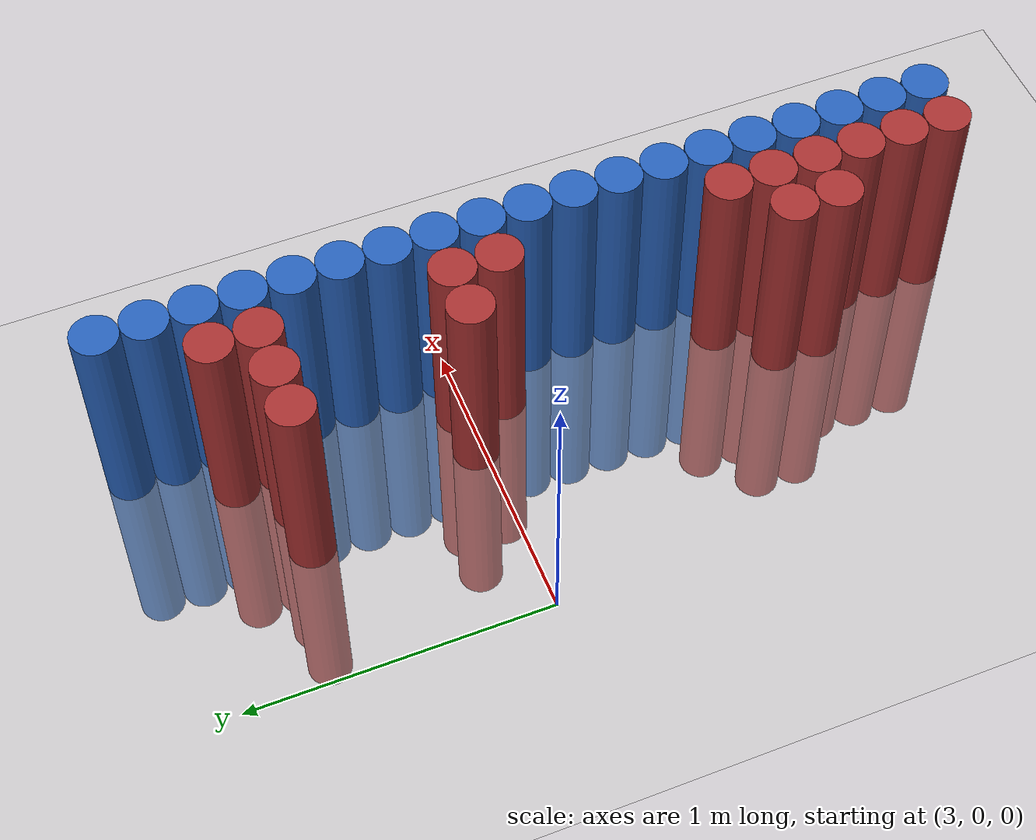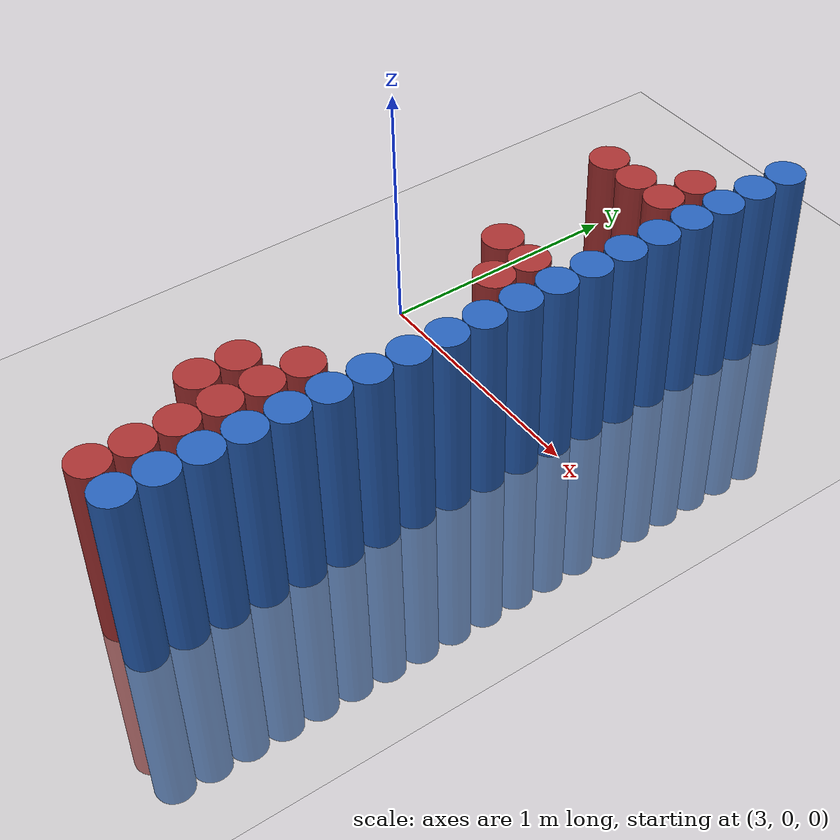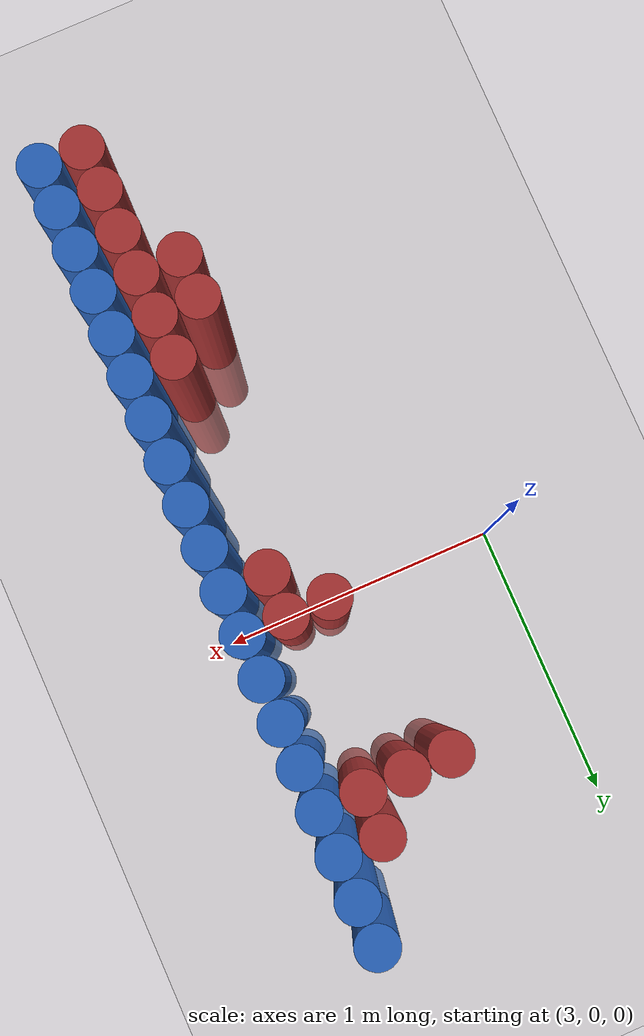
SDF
<sdf version="1.6">
 <world name="default">
  <model name="ground_plane">
   <static>1</static>
   <link name="link">
    <collision name="collision">
     <geometry><plane><normal>0 0 1</normal><size>100 100</size></plane></geometry>
     <surface><friction><ode><mu>100</mu><mu2>50</mu2></ode></friction></surface>
    </collision>
    <visual name="visual">
     <cast_shadows>0</cast_shadows>
     <geometry><plane><normal>0 0 1</normal><size>100 100</size></plane></geometry>
     <material>
      <script><uri>file://media/materials/scripts/gazebo.material</uri><name>Gazebo/Grey</name></script>
     </material>
    </visual>
   </link>
  </model>
  <model name="unit_cylinder_92">
   <static>1</static>
   <pose>3.925000 -1.625000 0.000000 0.000000 0.000000 0.000000</pose>
   <link name="link">
    <inertial>
     <mass>1</mass>
     <inertia><ixx>0.145833</ixx><ixy>0</ixy><ixz>0</ixz><iyy>0.145833</iyy><iyz>0</iyz><izz>0.125</izz></inertia>
    </inertial>
    <collision name="collision">
     <geometry><cylinder><radius>0.075000</radius><length>1.5</length></cylinder></geometry>
    </collision>
    <visual name="visual">
     <geometry><cylinder><radius>0.075000</radius><length>1.5</length></cylinder></geometry>
     <material>
      <ambient>0.152000 0.379000 0.720000 1</ambient>
      <diffuse>0.152000 0.379000 0.720000 1</diffuse>
     </material>
     <material>
      <script><name>Gazebo/Grey</name><uri>file://media/materials/scripts/gazebo.material</uri></script>
     </material>
    </visual>
   </link>
  </model>
  <model name="unit_cylinder_94">
   <static>1</static>
   <pose>3.925000 -1.475000 0.000000 0.000000 0.000000 0.000000</pose>
   <link name="link">
    <inertial>
     <mass>1</mass>
     <inertia><ixx>0.145833</ixx><ixy>0</ixy><ixz>0</ixz><iyy>0.145833</iyy><iyz>0</iyz><izz>0.125</izz></inertia>
    </inertial>
    <collision name="collision">
     <geometry><cylinder><radius>0.075000</radius><length>1.5</length></cylinder></geometry>
    </collision>
    <visual name="visual">
     <geometry><cylinder><radius>0.075000</radius><length>1.5</length></cylinder></geometry>
     <material>
      <ambient>0.152000 0.379000 0.720000 1</ambient>
      <diffuse>0.152000 0.379000 0.720000 1</diffuse>
     </material>
     <material>
      <script><name>Gazebo/Grey</name><uri>file://media/materials/scripts/gazebo.material</uri></script>
     </material>
    </visual>
   </link>
  </model>
  <model name="unit_cylinder_96">
   <static>1</static>
   <pose>3.925000 -1.325000 0.000000 0.000000 0.000000 0.000000</pose>
   <link name="link">
    <inertial>
     <mass>1</mass>
     <inertia><ixx>0.145833</ixx><ixy>0</ixy><ixz>0</ixz><iyy>0.145833</iyy><iyz>0</iyz><izz>0.125</izz></inertia>
    </inertial>
    <collision name="collision">
     <geometry><cylinder><radius>0.075000</radius><length>1.5</length></cylinder></geometry>
    </collision>
    <visual name="visual">
     <geometry><cylinder><radius>0.075000</radius><length>1.5</length></cylinder></geometry>
     <material>
      <ambient>0.152000 0.379000 0.720000 1</ambient>
      <diffuse>0.152000 0.379000 0.720000 1</diffuse>
     </material>
     <material>
      <script><name>Gazebo/Grey</name><uri>file://media/materials/scripts/gazebo.material</uri></script>
     </material>
    </visual>
   </link>
  </model>
  <model name="unit_cylinder_98">
   <static>1</static>
   <pose>3.925000 -1.175000 0.000000 0.000000 0.000000 0.000000</pose>
   <link name="link">
    <inertial>
     <mass>1</mass>
     <inertia><ixx>0.145833</ixx><ixy>0</ixy><ixz>0</ixz><iyy>0.145833</iyy><iyz>0</iyz><izz>0.125</izz></inertia>
    </inertial>
    <collision name="collision">
     <geometry><cylinder><radius>0.075000</radius><length>1.5</length></cylinder></geometry>
    </collision>
    <visual name="visual">
     <geometry><cylinder><radius>0.075000</radius><length>1.5</length></cylinder></geometry>
     <material>
      <ambient>0.152000 0.379000 0.720000 1</ambient>
      <diffuse>0.152000 0.379000 0.720000 1</diffuse>
     </material>
     <material>
      <script><name>Gazebo/Grey</name><uri>file://media/materials/scripts/gazebo.material</uri></script>
     </material>
    </visual>
   </link>
  </model>
  <model name="unit_cylinder_100">
   <static>1</static>
   <pose>3.925000 -1.025000 0.000000 0.000000 0.000000 0.000000</pose>
   <link name="link">
    <inertial>
     <mass>1</mass>
     <inertia><ixx>0.145833</ixx><ixy>0</ixy><ixz>0</ixz><iyy>0.145833</iyy><iyz>0</iyz><izz>0.125</izz></inertia>
    </inertial>
    <collision name="collision">
     <geometry><cylinder><radius>0.075000</radius><length>1.5</length></cylinder></geometry>
    </collision>
    <visual name="visual">
     <geometry><cylinder><radius>0.075000</radius><length>1.5</length></cylinder></geometry>
     <material>
      <ambient>0.152000 0.379000 0.720000 1</ambient>
      <diffuse>0.152000 0.379000 0.720000 1</diffuse>
     </material>
     <material>
      <script><name>Gazebo/Grey</name><uri>file://media/materials/scripts/gazebo.material</uri></script>
     </material>
    </visual>
   </link>
  </model>
  <model name="unit_cylinder_102">
   <static>1</static>
   <pose>3.925000 -0.875000 0.000000 0.000000 0.000000 0.000000</pose>
   <link name="link">
    <inertial>
     <mass>1</mass>
     <inertia><ixx>0.145833</ixx><ixy>0</ixy><ixz>0</ixz><iyy>0.145833</iyy><iyz>0</iyz><izz>0.125</izz></inertia>
    </inertial>
    <collision name="collision">
     <geometry><cylinder><radius>0.075000</radius><length>1.5</length></cylinder></geometry>
    </collision>
    <visual name="visual">
     <geometry><cylinder><radius>0.075000</radius><length>1.5</length></cylinder></geometry>
     <material>
      <ambient>0.152000 0.379000 0.720000 1</ambient>
      <diffuse>0.152000 0.379000 0.720000 1</diffuse>
     </material>
     <material>
      <script><name>Gazebo/Grey</name><uri>file://media/materials/scripts/gazebo.material</uri></script>
     </material>
    </visual>
   </link>
  </model>
  <model name="unit_cylinder_104">
   <static>1</static>
   <pose>3.925000 -0.725000 0.000000 0.000000 0.000000 0.000000</pose>
   <link name="link">
    <inertial>
     <mass>1</mass>
     <inertia><ixx>0.145833</ixx><ixy>0</ixy><ixz>0</ixz><iyy>0.145833</iyy><iyz>0</iyz><izz>0.125</izz></inertia>
    </inertial>
    <collision name="collision">
     <geometry><cylinder><radius>0.075000</radius><length>1.5</length></cylinder></geometry>
    </collision>
    <visual name="visual">
     <geometry><cylinder><radius>0.075000</radius><length>1.5</length></cylinder></geometry>
     <material>
      <ambient>0.152000 0.379000 0.720000 1</ambient>
      <diffuse>0.152000 0.379000 0.720000 1</diffuse>
     </material>
     <material>
      <script><name>Gazebo/Grey</name><uri>file://media/materials/scripts/gazebo.material</uri></script>
     </material>
    </visual>
   </link>
  </model>
  <model name="unit_cylinder_106">
   <static>1</static>
   <pose>3.925000 -0.575000 0.000000 0.000000 0.000000 0.000000</pose>
   <link name="link">
    <inertial>
     <mass>1</mass>
     <inertia><ixx>0.145833</ixx><ixy>0</ixy><ixz>0</ixz><iyy>0.145833</iyy><iyz>0</iyz><izz>0.125</izz></inertia>
    </inertial>
    <collision name="collision">
     <geometry><cylinder><radius>0.075000</radius><length>1.5</length></cylinder></geometry>
    </collision>
    <visual name="visual">
     <geometry><cylinder><radius>0.075000</radius><length>1.5</length></cylinder></geometry>
     <material>
      <ambient>0.152000 0.379000 0.720000 1</ambient>
      <diffuse>0.152000 0.379000 0.720000 1</diffuse>
     </material>
     <material>
      <script><name>Gazebo/Grey</name><uri>file://media/materials/scripts/gazebo.material</uri></script>
     </material>
    </visual>
   </link>
  </model>
  <model name="unit_cylinder_108">
   <static>1</static>
   <pose>3.925000 -0.425000 0.000000 0.000000 0.000000 0.000000</pose>
   <link name="link">
    <inertial>
     <mass>1</mass>
     <inertia><ixx>0.145833</ixx><ixy>0</ixy><ixz>0</ixz><iyy>0.145833</iyy><iyz>0</iyz><izz>0.125</izz></inertia>
    </inertial>
    <collision name="collision">
     <geometry><cylinder><radius>0.075000</radius><length>1.5</length></cylinder></geometry>
    </collision>
    <visual name="visual">
     <geometry><cylinder><radius>0.075000</radius><length>1.5</length></cylinder></geometry>
     <material>
      <ambient>0.152000 0.379000 0.720000 1</ambient>
      <diffuse>0.152000 0.379000 0.720000 1</diffuse>
     </material>
     <material>
      <script><name>Gazebo/Grey</name><uri>file://media/materials/scripts/gazebo.material</uri></script>
     </material>
    </visual>
   </link>
  </model>
  <model name="unit_cylinder_110">
   <static>1</static>
   <pose>3.925000 -0.275000 0.000000 0.000000 0.000000 0.000000</pose>
   <link name="link">
    <inertial>
     <mass>1</mass>
     <inertia><ixx>0.145833</ixx><ixy>0</ixy><ixz>0</ixz><iyy>0.145833</iyy><iyz>0</iyz><izz>0.125</izz></inertia>
    </inertial>
    <collision name="collision">
     <geometry><cylinder><radius>0.075000</radius><length>1.5</length></cylinder></geometry>
    </collision>
    <visual name="visual">
     <geometry><cylinder><radius>0.075000</radius><length>1.5</length></cylinder></geometry>
     <material>
      <ambient>0.152000 0.379000 0.720000 1</ambient>
      <diffuse>0.152000 0.379000 0.720000 1</diffuse>
     </material>
     <material>
      <script><name>Gazebo/Grey</name><uri>file://media/materials/scripts/gazebo.material</uri></script>
     </material>
    </visual>
   </link>
  </model>
  <model name="unit_cylinder_112">
   <static>1</static>
   <pose>3.925000 -0.125000 0.000000 0.000000 0.000000 0.000000</pose>
   <link name="link">
    <inertial>
     <mass>1</mass>
     <inertia><ixx>0.145833</ixx><ixy>0</ixy><ixz>0</ixz><iyy>0.145833</iyy><iyz>0</iyz><izz>0.125</izz></inertia>
    </inertial>
    <collision name="collision">
     <geometry><cylinder><radius>0.075000</radius><length>1.5</length></cylinder></geometry>
    </collision>
    <visual name="visual">
     <geometry><cylinder><radius>0.075000</radius><length>1.5</length></cylinder></geometry>
     <material>
      <ambient>0.152000 0.379000 0.720000 1</ambient>
      <diffuse>0.152000 0.379000 0.720000 1</diffuse>
     </material>
     <material>
      <script><name>Gazebo/Grey</name><uri>file://media/materials/scripts/gazebo.material</uri></script>
     </material>
    </visual>
   </link>
  </model>
  <model name="unit_cylinder_114">
   <static>1</static>
   <pose>3.925000 0.025000 0.000000 0.000000 0.000000 0.000000</pose>
   <link name="link">
    <inertial>
     <mass>1</mass>
     <inertia><ixx>0.145833</ixx><ixy>0</ixy><ixz>0</ixz><iyy>0.145833</iyy><iyz>0</iyz><izz>0.125</izz></inertia>
    </inertial>
    <collision name="collision">
     <geometry><cylinder><radius>0.075000</radius><length>1.5</length></cylinder></geometry>
    </collision>
    <visual name="visual">
     <geometry><cylinder><radius>0.075000</radius><length>1.5</length></cylinder></geometry>
     <material>
      <ambient>0.152000 0.379000 0.720000 1</ambient>
      <diffuse>0.152000 0.379000 0.720000 1</diffuse>
     </material>
     <material>
      <script><name>Gazebo/Grey</name><uri>file://media/materials/scripts/gazebo.material</uri></script>
     </material>
    </visual>
   </link>
  </model>
  <model name="unit_cylinder_116">
   <static>1</static>
   <pose>3.925000 0.175000 0.000000 0.000000 0.000000 0.000000</pose>
   <link name="link">
    <inertial>
     <mass>1</mass>
     <inertia><ixx>0.145833</ixx><ixy>0</ixy><ixz>0</ixz><iyy>0.145833</iyy><iyz>0</iyz><izz>0.125</izz></inertia>
    </inertial>
    <collision name="collision">
     <geometry><cylinder><radius>0.075000</radius><length>1.5</length></cylinder></geometry>
    </collision>
    <visual name="visual">
     <geometry><cylinder><radius>0.075000</radius><length>1.5</length></cylinder></geometry>
     <material>
      <ambient>0.152000 0.379000 0.720000 1</ambient>
      <diffuse>0.152000 0.379000 0.720000 1</diffuse>
     </material>
     <material>
      <script><name>Gazebo/Grey</name><uri>file://media/materials/scripts/gazebo.material</uri></script>
     </material>
    </visual>
   </link>
  </model>
  <model name="unit_cylinder_118">
   <static>1</static>
   <pose>3.925000 0.325000 0.000000 0.000000 0.000000 0.000000</pose>
   <link name="link">
    <inertial>
     <mass>1</mass>
     <inertia><ixx>0.145833</ixx><ixy>0</ixy><ixz>0</ixz><iyy>0.145833</iyy><iyz>0</iyz><izz>0.125</izz></inertia>
    </inertial>
    <collision name="collision">
     <geometry><cylinder><radius>0.075000</radius><length>1.5</length></cylinder></geometry>
    </collision>
    <visual name="visual">
     <geometry><cylinder><radius>0.075000</radius><length>1.5</length></cylinder></geometry>
     <material>
      <ambient>0.152000 0.379000 0.720000 1</ambient>
      <diffuse>0.152000 0.379000 0.720000 1</diffuse>
     </material>
     <material>
      <script><name>Gazebo/Grey</name><uri>file://media/materials/scripts/gazebo.material</uri></script>
     </material>
    </visual>
   </link>
  </model>
  <model name="unit_cylinder_120">
   <static>1</static>
   <pose>3.925000 0.475000 0.000000 0.000000 0.000000 0.000000</pose>
   <link name="link">
    <inertial>
     <mass>1</mass>
     <inertia><ixx>0.145833</ixx><ixy>0</ixy><ixz>0</ixz><iyy>0.145833</iyy><iyz>0</iyz><izz>0.125</izz></inertia>
    </inertial>
    <collision name="collision">
     <geometry><cylinder><radius>0.075000</radius><length>1.5</length></cylinder></geometry>
    </collision>
    <visual name="visual">
     <geometry><cylinder><radius>0.075000</radius><length>1.5</length></cylinder></geometry>
     <material>
      <ambient>0.152000 0.379000 0.720000 1</ambient>
      <diffuse>0.152000 0.379000 0.720000 1</diffuse>
     </material>
     <material>
      <script><name>Gazebo/Grey</name><uri>file://media/materials/scripts/gazebo.material</uri></script>
     </material>
    </visual>
   </link>
  </model>
  <model name="unit_cylinder_122">
   <static>1</static>
   <pose>3.925000 0.625000 0.000000 0.000000 0.000000 0.000000</pose>
   <link name="link">
    <inertial>
     <mass>1</mass>
     <inertia><ixx>0.145833</ixx><ixy>0</ixy><ixz>0</ixz><iyy>0.145833</iyy><iyz>0</iyz><izz>0.125</izz></inertia>
    </inertial>
    <collision name="collision">
     <geometry><cylinder><radius>0.075000</radius><length>1.5</length></cylinder></geometry>
    </collision>
    <visual name="visual">
     <geometry><cylinder><radius>0.075000</radius><length>1.5</length></cylinder></geometry>
     <material>
      <ambient>0.152000 0.379000 0.720000 1</ambient>
      <diffuse>0.152000 0.379000 0.720000 1</diffuse>
     </material>
     <material>
      <script><name>Gazebo/Grey</name><uri>file://media/materials/scripts/gazebo.material</uri></script>
     </material>
    </visual>
   </link>
  </model>
  <model name="unit_cylinder_124">
   <static>1</static>
   <pose>3.925000 0.775000 0.000000 0.000000 0.000000 0.000000</pose>
   <link name="link">
    <inertial>
     <mass>1</mass>
     <inertia><ixx>0.145833</ixx><ixy>0</ixy><ixz>0</ixz><iyy>0.145833</iyy><iyz>0</iyz><izz>0.125</izz></inertia>
    </inertial>
    <collision name="collision">
     <geometry><cylinder><radius>0.075000</radius><length>1.5</length></cylinder></geometry>
    </collision>
    <visual name="visual">
     <geometry><cylinder><radius>0.075000</radius><length>1.5</length></cylinder></geometry>
     <material>
      <ambient>0.152000 0.379000 0.720000 1</ambient>
      <diffuse>0.152000 0.379000 0.720000 1</diffuse>
     </material>
     <material>
      <script><name>Gazebo/Grey</name><uri>file://media/materials/scripts/gazebo.material</uri></script>
     </material>
    </visual>
   </link>
  </model>
  <model name="unit_cylinder_126">
   <static>1</static>
   <pose>3.925000 0.925000 0.000000 0.000000 0.000000 0.000000</pose>
   <link name="link">
    <inertial>
     <mass>1</mass>
     <inertia><ixx>0.145833</ixx><ixy>0</ixy><ixz>0</ixz><iyy>0.145833</iyy><iyz>0</iyz><izz>0.125</izz></inertia>
    </inertial>
    <collision name="collision">
     <geometry><cylinder><radius>0.075000</radius><length>1.5</length></cylinder></geometry>
    </collision>
    <visual name="visual">
     <geometry><cylinder><radius>0.075000</radius><length>1.5</length></cylinder></geometry>
     <material>
      <ambient>0.152000 0.379000 0.720000 1</ambient>
      <diffuse>0.152000 0.379000 0.720000 1</diffuse>
     </material>
     <material>
      <script><name>Gazebo/Grey</name><uri>file://media/materials/scripts/gazebo.material</uri></script>
     </material>
    </visual>
   </link>
  </model>
  <model name="unit_cylinder_128">
   <static>1</static>
   <pose>3.925000 1.075000 0.000000 0.000000 0.000000 0.000000</pose>
   <link name="link">
    <inertial>
     <mass>1</mass>
     <inertia><ixx>0.145833</ixx><ixy>0</ixy><ixz>0</ixz><iyy>0.145833</iyy><iyz>0</iyz><izz>0.125</izz></inertia>
    </inertial>
    <collision name="collision">
     <geometry><cylinder><radius>0.075000</radius><length>1.5</length></cylinder></geometry>
    </collision>
    <visual name="visual">
     <geometry><cylinder><radius>0.075000</radius><length>1.5</length></cylinder></geometry>
     <material>
      <ambient>0.152000 0.379000 0.720000 1</ambient>
      <diffuse>0.152000 0.379000 0.720000 1</diffuse>
     </material>
     <material>
      <script><name>Gazebo/Grey</name><uri>file://media/materials/scripts/gazebo.material</uri></script>
     </material>
    </visual>
   </link>
  </model>
  <model name="unit_cylinder_602">
   <static>1</static>
   <pose>3.475000 0.625000 0.000000 0.000000 0.000000 0.000000</pose>
   <link name="link">
    <inertial>
     <mass>1</mass>
     <inertia><ixx>0.145833</ixx><ixy>0</ixy><ixz>0</ixz><iyy>0.145833</iyy><iyz>0</iyz><izz>0.125</izz></inertia>
    </inertial>
    <collision name="collision">
     <geometry><cylinder><radius>0.075000</radius><length>1.5</length></cylinder></geometry>
    </collision>
    <visual name="visual">
     <geometry><cylinder><radius>0.075000</radius><length>1.5</length></cylinder></geometry>
     <material>
      <ambient>0.648000 0.192000 0.192000 1</ambient>
      <diffuse>0.648000 0.192000 0.192000 1</diffuse>
     </material>
     <material>
      <script><name>Gazebo/Grey</name><uri>file://media/materials/scripts/gazebo.material</uri></script>
     </material>
    </visual>
   </link>
  </model>
  <model name="unit_cylinder_604">
   <static>1</static>
   <pose>3.625000 -1.175000 0.000000 0.000000 0.000000 0.000000</pose>
   <link name="link">
    <inertial>
     <mass>1</mass>
     <inertia><ixx>0.145833</ixx><ixy>0</ixy><ixz>0</ixz><iyy>0.145833</iyy><iyz>0</iyz><izz>0.125</izz></inertia>
    </inertial>
    <collision name="collision">
     <geometry><cylinder><radius>0.075000</radius><length>1.5</length></cylinder></geometry>
    </collision>
    <visual name="visual">
     <geometry><cylinder><radius>0.075000</radius><length>1.5</length></cylinder></geometry>
     <material>
      <ambient>0.648000 0.192000 0.192000 1</ambient>
      <diffuse>0.648000 0.192000 0.192000 1</diffuse>
     </material>
     <material>
      <script><name>Gazebo/Grey</name><uri>file://media/materials/scripts/gazebo.material</uri></script>
     </material>
    </visual>
   </link>
  </model>
  <model name="unit_cylinder_605">
   <static>1</static>
   <pose>3.625000 -1.025000 0.000000 0.000000 0.000000 0.000000</pose>
   <link name="link">
    <inertial>
     <mass>1</mass>
     <inertia><ixx>0.145833</ixx><ixy>0</ixy><ixz>0</ixz><iyy>0.145833</iyy><iyz>0</iyz><izz>0.125</izz></inertia>
    </inertial>
    <collision name="collision">
     <geometry><cylinder><radius>0.075000</radius><length>1.5</length></cylinder></geometry>
    </collision>
    <visual name="visual">
     <geometry><cylinder><radius>0.075000</radius><length>1.5</length></cylinder></geometry>
     <material>
      <ambient>0.648000 0.192000 0.192000 1</ambient>
      <diffuse>0.648000 0.192000 0.192000 1</diffuse>
     </material>
     <material>
      <script><name>Gazebo/Grey</name><uri>file://media/materials/scripts/gazebo.material</uri></script>
     </material>
    </visual>
   </link>
  </model>
  <model name="unit_cylinder_606">
   <static>1</static>
   <pose>3.625000 0.025000 0.000000 0.000000 0.000000 0.000000</pose>
   <link name="link">
    <inertial>
     <mass>1</mass>
     <inertia><ixx>0.145833</ixx><ixy>0</ixy><ixz>0</ixz><iyy>0.145833</iyy><iyz>0</iyz><izz>0.125</izz></inertia>
    </inertial>
    <collision name="collision">
     <geometry><cylinder><radius>0.075000</radius><length>1.5</length></cylinder></geometry>
    </collision>
    <visual name="visual">
     <geometry><cylinder><radius>0.075000</radius><length>1.5</length></cylinder></geometry>
     <material>
      <ambient>0.648000 0.192000 0.192000 1</ambient>
      <diffuse>0.648000 0.192000 0.192000 1</diffuse>
     </material>
     <material>
      <script><name>Gazebo/Grey</name><uri>file://media/materials/scripts/gazebo.material</uri></script>
     </material>
    </visual>
   </link>
  </model>
  <model name="unit_cylinder_607">
   <static>1</static>
   <pose>3.625000 0.625000 0.000000 0.000000 0.000000 0.000000</pose>
   <link name="link">
    <inertial>
     <mass>1</mass>
     <inertia><ixx>0.145833</ixx><ixy>0</ixy><ixz>0</ixz><iyy>0.145833</iyy><iyz>0</iyz><izz>0.125</izz></inertia>
    </inertial>
    <collision name="collision">
     <geometry><cylinder><radius>0.075000</radius><length>1.5</length></cylinder></geometry>
    </collision>
    <visual name="visual">
     <geometry><cylinder><radius>0.075000</radius><length>1.5</length></cylinder></geometry>
     <material>
      <ambient>0.648000 0.192000 0.192000 1</ambient>
      <diffuse>0.648000 0.192000 0.192000 1</diffuse>
     </material>
     <material>
      <script><name>Gazebo/Grey</name><uri>file://media/materials/scripts/gazebo.material</uri></script>
     </material>
    </visual>
   </link>
  </model>
  <model name="unit_cylinder_611">
   <static>1</static>
   <pose>3.775000 -1.625000 0.000000 0.000000 0.000000 0.000000</pose>
   <link name="link">
    <inertial>
     <mass>1</mass>
     <inertia><ixx>0.145833</ixx><ixy>0</ixy><ixz>0</ixz><iyy>0.145833</iyy><iyz>0</iyz><izz>0.125</izz></inertia>
    </inertial>
    <collision name="collision">
     <geometry><cylinder><radius>0.075000</radius><length>1.5</length></cylinder></geometry>
    </collision>
    <visual name="visual">
     <geometry><cylinder><radius>0.075000</radius><length>1.5</length></cylinder></geometry>
     <material>
      <ambient>0.648000 0.192000 0.192000 1</ambient>
      <diffuse>0.648000 0.192000 0.192000 1</diffuse>
     </material>
     <material>
      <script><name>Gazebo/Grey</name><uri>file://media/materials/scripts/gazebo.material</uri></script>
     </material>
    </visual>
   </link>
  </model>
  <model name="unit_cylinder_612">
   <static>1</static>
   <pose>3.775000 -1.475000 0.000000 0.000000 0.000000 0.000000</pose>
   <link name="link">
    <inertial>
     <mass>1</mass>
     <inertia><ixx>0.145833</ixx><ixy>0</ixy><ixz>0</ixz><iyy>0.145833</iyy><iyz>0</iyz><izz>0.125</izz></inertia>
    </inertial>
    <collision name="collision">
     <geometry><cylinder><radius>0.075000</radius><length>1.5</length></cylinder></geometry>
    </collision>
    <visual name="visual">
     <geometry><cylinder><radius>0.075000</radius><length>1.5</length></cylinder></geometry>
     <material>
      <ambient>0.648000 0.192000 0.192000 1</ambient>
      <diffuse>0.648000 0.192000 0.192000 1</diffuse>
     </material>
     <material>
      <script><name>Gazebo/Grey</name><uri>file://media/materials/scripts/gazebo.material</uri></script>
     </material>
    </visual>
   </link>
  </model>
  <model name="unit_cylinder_613">
   <static>1</static>
   <pose>3.775000 -1.325000 0.000000 0.000000 0.000000 0.000000</pose>
   <link name="link">
    <inertial>
     <mass>1</mass>
     <inertia><ixx>0.145833</ixx><ixy>0</ixy><ixz>0</ixz><iyy>0.145833</iyy><iyz>0</iyz><izz>0.125</izz></inertia>
    </inertial>
    <collision name="collision">
     <geometry><cylinder><radius>0.075000</radius><length>1.5</length></cylinder></geometry>
    </collision>
    <visual name="visual">
     <geometry><cylinder><radius>0.075000</radius><length>1.5</length></cylinder></geometry>
     <material>
      <ambient>0.648000 0.192000 0.192000 1</ambient>
      <diffuse>0.648000 0.192000 0.192000 1</diffuse>
     </material>
     <material>
      <script><name>Gazebo/Grey</name><uri>file://media/materials/scripts/gazebo.material</uri></script>
     </material>
    </visual>
   </link>
  </model>
  <model name="unit_cylinder_614">
   <static>1</static>
   <pose>3.775000 -1.175000 0.000000 0.000000 0.000000 0.000000</pose>
   <link name="link">
    <inertial>
     <mass>1</mass>
     <inertia><ixx>0.145833</ixx><ixy>0</ixy><ixz>0</ixz><iyy>0.145833</iyy><iyz>0</iyz><izz>0.125</izz></inertia>
    </inertial>
    <collision name="collision">
     <geometry><cylinder><radius>0.075000</radius><length>1.5</length></cylinder></geometry>
    </collision>
    <visual name="visual">
     <geometry><cylinder><radius>0.075000</radius><length>1.5</length></cylinder></geometry>
     <material>
      <ambient>0.648000 0.192000 0.192000 1</ambient>
      <diffuse>0.648000 0.192000 0.192000 1</diffuse>
     </material>
     <material>
      <script><name>Gazebo/Grey</name><uri>file://media/materials/scripts/gazebo.material</uri></script>
     </material>
    </visual>
   </link>
  </model>
  <model name="unit_cylinder_615">
   <static>1</static>
   <pose>3.775000 -1.025000 0.000000 0.000000 0.000000 0.000000</pose>
   <link name="link">
    <inertial>
     <mass>1</mass>
     <inertia><ixx>0.145833</ixx><ixy>0</ixy><ixz>0</ixz><iyy>0.145833</iyy><iyz>0</iyz><izz>0.125</izz></inertia>
    </inertial>
    <collision name="collision">
     <geometry><cylinder><radius>0.075000</radius><length>1.5</length></cylinder></geometry>
    </collision>
    <visual name="visual">
     <geometry><cylinder><radius>0.075000</radius><length>1.5</length></cylinder></geometry>
     <material>
      <ambient>0.648000 0.192000 0.192000 1</ambient>
      <diffuse>0.648000 0.192000 0.192000 1</diffuse>
     </material>
     <material>
      <script><name>Gazebo/Grey</name><uri>file://media/materials/scripts/gazebo.material</uri></script>
     </material>
    </visual>
   </link>
  </model>
  <model name="unit_cylinder_616">
   <static>1</static>
   <pose>3.775000 -0.875000 0.000000 0.000000 0.000000 0.000000</pose>
   <link name="link">
    <inertial>
     <mass>1</mass>
     <inertia><ixx>0.145833</ixx><ixy>0</ixy><ixz>0</ixz><iyy>0.145833</iyy><iyz>0</iyz><izz>0.125</izz></inertia>
    </inertial>
    <collision name="collision">
     <geometry><cylinder><radius>0.075000</radius><length>1.5</length></cylinder></geometry>
    </collision>
    <visual name="visual">
     <geometry><cylinder><radius>0.075000</radius><length>1.5</length></cylinder></geometry>
     <material>
      <ambient>0.648000 0.192000 0.192000 1</ambient>
      <diffuse>0.648000 0.192000 0.192000 1</diffuse>
     </material>
     <material>
      <script><name>Gazebo/Grey</name><uri>file://media/materials/scripts/gazebo.material</uri></script>
     </material>
    </visual>
   </link>
  </model>
  <model name="unit_cylinder_617">
   <static>1</static>
   <pose>3.775000 -0.125000 0.000000 0.000000 0.000000 0.000000</pose>
   <link name="link">
    <inertial>
     <mass>1</mass>
     <inertia><ixx>0.145833</ixx><ixy>0</ixy><ixz>0</ixz><iyy>0.145833</iyy><iyz>0</iyz><izz>0.125</izz></inertia>
    </inertial>
    <collision name="collision">
     <geometry><cylinder><radius>0.075000</radius><length>1.5</length></cylinder></geometry>
    </collision>
    <visual name="visual">
     <geometry><cylinder><radius>0.075000</radius><length>1.5</length></cylinder></geometry>
     <material>
      <ambient>0.648000 0.192000 0.192000 1</ambient>
      <diffuse>0.648000 0.192000 0.192000 1</diffuse>
     </material>
     <material>
      <script><name>Gazebo/Grey</name><uri>file://media/materials/scripts/gazebo.material</uri></script>
     </material>
    </visual>
   </link>
  </model>
  <model name="unit_cylinder_618">
   <static>1</static>
   <pose>3.775000 0.025000 0.000000 0.000000 0.000000 0.000000</pose>
   <link name="link">
    <inertial>
     <mass>1</mass>
     <inertia><ixx>0.145833</ixx><ixy>0</ixy><ixz>0</ixz><iyy>0.145833</iyy><iyz>0</iyz><izz>0.125</izz></inertia>
    </inertial>
    <collision name="collision">
     <geometry><cylinder><radius>0.075000</radius><length>1.5</length></cylinder></geometry>
    </collision>
    <visual name="visual">
     <geometry><cylinder><radius>0.075000</radius><length>1.5</length></cylinder></geometry>
     <material>
      <ambient>0.648000 0.192000 0.192000 1</ambient>
      <diffuse>0.648000 0.192000 0.192000 1</diffuse>
     </material>
     <material>
      <script><name>Gazebo/Grey</name><uri>file://media/materials/scripts/gazebo.material</uri></script>
     </material>
    </visual>
   </link>
  </model>
  <model name="unit_cylinder_619">
   <static>1</static>
   <pose>3.775000 0.625000 0.000000 0.000000 0.000000 0.000000</pose>
   <link name="link">
    <inertial>
     <mass>1</mass>
     <inertia><ixx>0.145833</ixx><ixy>0</ixy><ixz>0</ixz><iyy>0.145833</iyy><iyz>0</iyz><izz>0.125</izz></inertia>
    </inertial>
    <collision name="collision">
     <geometry><cylinder><radius>0.075000</radius><length>1.5</length></cylinder></geometry>
    </collision>
    <visual name="visual">
     <geometry><cylinder><radius>0.075000</radius><length>1.5</length></cylinder></geometry>
     <material>
      <ambient>0.648000 0.192000 0.192000 1</ambient>
      <diffuse>0.648000 0.192000 0.192000 1</diffuse>
     </material>
     <material>
      <script><name>Gazebo/Grey</name><uri>file://media/materials/scripts/gazebo.material</uri></script>
     </material>
    </visual>
   </link>
  </model>
  <model name="unit_cylinder_620">
   <static>1</static>
   <pose>3.775000 0.775000 0.000000 0.000000 0.000000 0.000000</pose>
   <link name="link">
    <inertial>
     <mass>1</mass>
     <inertia><ixx>0.145833</ixx><ixy>0</ixy><ixz>0</ixz><iyy>0.145833</iyy><iyz>0</iyz><izz>0.125</izz></inertia>
    </inertial>
    <collision name="collision">
     <geometry><cylinder><radius>0.075000</radius><length>1.5</length></cylinder></geometry>
    </collision>
    <visual name="visual">
     <geometry><cylinder><radius>0.075000</radius><length>1.5</length></cylinder></geometry>
     <material>
      <ambient>0.648000 0.192000 0.192000 1</ambient>
      <diffuse>0.648000 0.192000 0.192000 1</diffuse>
     </material>
     <material>
      <script><name>Gazebo/Grey</name><uri>file://media/materials/scripts/gazebo.material</uri></script>
     </material>
    </visual>
   </link>
  </model>
  <model name="unit_cylinder_642">
   <static>1</static>
   <pose>3.925000 -1.625000 0.000000 0.000000 0.000000 0.000000</pose>
   <link name="link">
    <inertial>
     <mass>1</mass>
     <inertia><ixx>0.145833</ixx><ixy>0</ixy><ixz>0</ixz><iyy>0.145833</iyy><iyz>0</iyz><izz>0.125</izz></inertia>
    </inertial>
    <collision name="collision">
     <geometry><cylinder><radius>0.075000</radius><length>1.5</length></cylinder></geometry>
    </collision>
    <visual name="visual">
     <geometry><cylinder><radius>0.075000</radius><length>1.5</length></cylinder></geometry>
     <material>
      <ambient>0.152000 0.379000 0.720000 1</ambient>
      <diffuse>0.152000 0.379000 0.720000 1</diffuse>
     </material>
     <material>
      <script><name>Gazebo/Grey</name><uri>file://media/materials/scripts/gazebo.material</uri></script>
     </material>
    </visual>
   </link>
  </model>
  <model name="unit_cylinder_643">
   <static>1</static>
   <pose>3.925000 -1.475000 0.000000 0.000000 0.000000 0.000000</pose>
   <link name="link">
    <inertial>
     <mass>1</mass>
     <inertia><ixx>0.145833</ixx><ixy>0</ixy><ixz>0</ixz><iyy>0.145833</iyy><iyz>0</iyz><izz>0.125</izz></inertia>
    </inertial>
    <collision name="collision">
     <geometry><cylinder><radius>0.075000</radius><length>1.5</length></cylinder></geometry>
    </collision>
    <visual name="visual">
     <geometry><cylinder><radius>0.075000</radius><length>1.5</length></cylinder></geometry>
     <material>
      <ambient>0.152000 0.379000 0.720000 1</ambient>
      <diffuse>0.152000 0.379000 0.720000 1</diffuse>
     </material>
     <material>
      <script><name>Gazebo/Grey</name><uri>file://media/materials/scripts/gazebo.material</uri></script>
     </material>
    </visual>
   </link>
  </model>
  <model name="unit_cylinder_644">
   <static>1</static>
   <pose>3.925000 -1.325000 0.000000 0.000000 0.000000 0.000000</pose>
   <link name="link">
    <inertial>
     <mass>1</mass>
     <inertia><ixx>0.145833</ixx><ixy>0</ixy><ixz>0</ixz><iyy>0.145833</iyy><iyz>0</iyz><izz>0.125</izz></inertia>
    </inertial>
    <collision name="collision">
     <geometry><cylinder><radius>0.075000</radius><length>1.5</length></cylinder></geometry>
    </collision>
    <visual name="visual">
     <geometry><cylinder><radius>0.075000</radius><length>1.5</length></cylinder></geometry>
     <material>
      <ambient>0.152000 0.379000 0.720000 1</ambient>
      <diffuse>0.152000 0.379000 0.720000 1</diffuse>
     </material>
     <material>
      <script><name>Gazebo/Grey</name><uri>file://media/materials/scripts/gazebo.material</uri></script>
     </material>
    </visual>
   </link>
  </model>
  <model name="unit_cylinder_645">
   <static>1</static>
   <pose>3.925000 -1.175000 0.000000 0.000000 0.000000 0.000000</pose>
   <link name="link">
    <inertial>
     <mass>1</mass>
     <inertia><ixx>0.145833</ixx><ixy>0</ixy><ixz>0</ixz><iyy>0.145833</iyy><iyz>0</iyz><izz>0.125</izz></inertia>
    </inertial>
    <collision name="collision">
     <geometry><cylinder><radius>0.075000</radius><length>1.5</length></cylinder></geometry>
    </collision>
    <visual name="visual">
     <geometry><cylinder><radius>0.075000</radius><length>1.5</length></cylinder></geometry>
     <material>
      <ambient>0.152000 0.379000 0.720000 1</ambient>
      <diffuse>0.152000 0.379000 0.720000 1</diffuse>
     </material>
     <material>
      <script><name>Gazebo/Grey</name><uri>file://media/materials/scripts/gazebo.material</uri></script>
     </material>
    </visual>
   </link>
  </model>
  <model name="unit_cylinder_646">
   <static>1</static>
   <pose>3.925000 -1.025000 0.000000 0.000000 0.000000 0.000000</pose>
   <link name="link">
    <inertial>
     <mass>1</mass>
     <inertia><ixx>0.145833</ixx><ixy>0</ixy><ixz>0</ixz><iyy>0.145833</iyy><iyz>0</iyz><izz>0.125</izz></inertia>
    </inertial>
    <collision name="collision">
     <geometry><cylinder><radius>0.075000</radius><length>1.5</length></cylinder></geometry>
    </collision>
    <visual name="visual">
     <geometry><cylinder><radius>0.075000</radius><length>1.5</length></cylinder></geometry>
     <material>
      <ambient>0.152000 0.379000 0.720000 1</ambient>
      <diffuse>0.152000 0.379000 0.720000 1</diffuse>
     </material>
     <material>
      <script><name>Gazebo/Grey</name><uri>file://media/materials/scripts/gazebo.material</uri></script>
     </material>
    </visual>
   </link>
  </model>
  <model name="unit_cylinder_647">
   <static>1</static>
   <pose>3.925000 -0.875000 0.000000 0.000000 0.000000 0.000000</pose>
   <link name="link">
    <inertial>
     <mass>1</mass>
     <inertia><ixx>0.145833</ixx><ixy>0</ixy><ixz>0</ixz><iyy>0.145833</iyy><iyz>0</iyz><izz>0.125</izz></inertia>
    </inertial>
    <collision name="collision">
     <geometry><cylinder><radius>0.075000</radius><length>1.5</length></cylinder></geometry>
    </collision>
    <visual name="visual">
     <geometry><cylinder><radius>0.075000</radius><length>1.5</length></cylinder></geometry>
     <material>
      <ambient>0.152000 0.379000 0.720000 1</ambient>
      <diffuse>0.152000 0.379000 0.720000 1</diffuse>
     </material>
     <material>
      <script><name>Gazebo/Grey</name><uri>file://media/materials/scripts/gazebo.material</uri></script>
     </material>
    </visual>
   </link>
  </model>
  <model name="unit_cylinder_648">
   <static>1</static>
   <pose>3.925000 -0.725000 0.000000 0.000000 0.000000 0.000000</pose>
   <link name="link">
    <inertial>
     <mass>1</mass>
     <inertia><ixx>0.145833</ixx><ixy>0</ixy><ixz>0</ixz><iyy>0.145833</iyy><iyz>0</iyz><izz>0.125</izz></inertia>
    </inertial>
    <collision name="collision">
     <geometry><cylinder><radius>0.075000</radius><length>1.5</length></cylinder></geometry>
    </collision>
    <visual name="visual">
     <geometry><cylinder><radius>0.075000</radius><length>1.5</length></cylinder></geometry>
     <material>
      <ambient>0.152000 0.379000 0.720000 1</ambient>
      <diffuse>0.152000 0.379000 0.720000 1</diffuse>
     </material>
     <material>
      <script><name>Gazebo/Grey</name><uri>file://media/materials/scripts/gazebo.material</uri></script>
     </material>
    </visual>
   </link>
  </model>
  <model name="unit_cylinder_649">
   <static>1</static>
   <pose>3.925000 -0.575000 0.000000 0.000000 0.000000 0.000000</pose>
   <link name="link">
    <inertial>
     <mass>1</mass>
     <inertia><ixx>0.145833</ixx><ixy>0</ixy><ixz>0</ixz><iyy>0.145833</iyy><iyz>0</iyz><izz>0.125</izz></inertia>
    </inertial>
    <collision name="collision">
     <geometry><cylinder><radius>0.075000</radius><length>1.5</length></cylinder></geometry>
    </collision>
    <visual name="visual">
     <geometry><cylinder><radius>0.075000</radius><length>1.5</length></cylinder></geometry>
     <material>
      <ambient>0.152000 0.379000 0.720000 1</ambient>
      <diffuse>0.152000 0.379000 0.720000 1</diffuse>
     </material>
     <material>
      <script><name>Gazebo/Grey</name><uri>file://media/materials/scripts/gazebo.material</uri></script>
     </material>
    </visual>
   </link>
  </model>
  <model name="unit_cylinder_650">
   <static>1</static>
   <pose>3.925000 -0.425000 0.000000 0.000000 0.000000 0.000000</pose>
   <link name="link">
    <inertial>
     <mass>1</mass>
     <inertia><ixx>0.145833</ixx><ixy>0</ixy><ixz>0</ixz><iyy>0.145833</iyy><iyz>0</iyz><izz>0.125</izz></inertia>
    </inertial>
    <collision name="collision">
     <geometry><cylinder><radius>0.075000</radius><length>1.5</length></cylinder></geometry>
    </collision>
    <visual name="visual">
     <geometry><cylinder><radius>0.075000</radius><length>1.5</length></cylinder></geometry>
     <material>
      <ambient>0.152000 0.379000 0.720000 1</ambient>
      <diffuse>0.152000 0.379000 0.720000 1</diffuse>
     </material>
     <material>
      <script><name>Gazebo/Grey</name><uri>file://media/materials/scripts/gazebo.material</uri></script>
     </material>
    </visual>
   </link>
  </model>
  <model name="unit_cylinder_651">
   <static>1</static>
   <pose>3.925000 -0.275000 0.000000 0.000000 0.000000 0.000000</pose>
   <link name="link">
    <inertial>
     <mass>1</mass>
     <inertia><ixx>0.145833</ixx><ixy>0</ixy><ixz>0</ixz><iyy>0.145833</iyy><iyz>0</iyz><izz>0.125</izz></inertia>
    </inertial>
    <collision name="collision">
     <geometry><cylinder><radius>0.075000</radius><length>1.5</length></cylinder></geometry>
    </collision>
    <visual name="visual">
     <geometry><cylinder><radius>0.075000</radius><length>1.5</length></cylinder></geometry>
     <material>
      <ambient>0.152000 0.379000 0.720000 1</ambient>
      <diffuse>0.152000 0.379000 0.720000 1</diffuse>
     </material>
     <material>
      <script><name>Gazebo/Grey</name><uri>file://media/materials/scripts/gazebo.material</uri></script>
     </material>
    </visual>
   </link>
  </model>
  <model name="unit_cylinder_652">
   <static>1</static>
   <pose>3.925000 -0.125000 0.000000 0.000000 0.000000 0.000000</pose>
   <link name="link">
    <inertial>
     <mass>1</mass>
     <inertia><ixx>0.145833</ixx><ixy>0</ixy><ixz>0</ixz><iyy>0.145833</iyy><iyz>0</iyz><izz>0.125</izz></inertia>
    </inertial>
    <collision name="collision">
     <geometry><cylinder><radius>0.075000</radius><length>1.5</length></cylinder></geometry>
    </collision>
    <visual name="visual">
     <geometry><cylinder><radius>0.075000</radius><length>1.5</length></cylinder></geometry>
     <material>
      <ambient>0.152000 0.379000 0.720000 1</ambient>
      <diffuse>0.152000 0.379000 0.720000 1</diffuse>
     </material>
     <material>
      <script><name>Gazebo/Grey</name><uri>file://media/materials/scripts/gazebo.material</uri></script>
     </material>
    </visual>
   </link>
  </model>
  <model name="unit_cylinder_653">
   <static>1</static>
   <pose>3.925000 0.025000 0.000000 0.000000 0.000000 0.000000</pose>
   <link name="link">
    <inertial>
     <mass>1</mass>
     <inertia><ixx>0.145833</ixx><ixy>0</ixy><ixz>0</ixz><iyy>0.145833</iyy><iyz>0</iyz><izz>0.125</izz></inertia>
    </inertial>
    <collision name="collision">
     <geometry><cylinder><radius>0.075000</radius><length>1.5</length></cylinder></geometry>
    </collision>
    <visual name="visual">
     <geometry><cylinder><radius>0.075000</radius><length>1.5</length></cylinder></geometry>
     <material>
      <ambient>0.152000 0.379000 0.720000 1</ambient>
      <diffuse>0.152000 0.379000 0.720000 1</diffuse>
     </material>
     <material>
      <script><name>Gazebo/Grey</name><uri>file://media/materials/scripts/gazebo.material</uri></script>
     </material>
    </visual>
   </link>
  </model>
  <model name="unit_cylinder_654">
   <static>1</static>
   <pose>3.925000 0.175000 0.000000 0.000000 0.000000 0.000000</pose>
   <link name="link">
    <inertial>
     <mass>1</mass>
     <inertia><ixx>0.145833</ixx><ixy>0</ixy><ixz>0</ixz><iyy>0.145833</iyy><iyz>0</iyz><izz>0.125</izz></inertia>
    </inertial>
    <collision name="collision">
     <geometry><cylinder><radius>0.075000</radius><length>1.5</length></cylinder></geometry>
    </collision>
    <visual name="visual">
     <geometry><cylinder><radius>0.075000</radius><length>1.5</length></cylinder></geometry>
     <material>
      <ambient>0.152000 0.379000 0.720000 1</ambient>
      <diffuse>0.152000 0.379000 0.720000 1</diffuse>
     </material>
     <material>
      <script><name>Gazebo/Grey</name><uri>file://media/materials/scripts/gazebo.material</uri></script>
     </material>
    </visual>
   </link>
  </model>
  <model name="unit_cylinder_655">
   <static>1</static>
   <pose>3.925000 0.325000 0.000000 0.000000 0.000000 0.000000</pose>
   <link name="link">
    <inertial>
     <mass>1</mass>
     <inertia><ixx>0.145833</ixx><ixy>0</ixy><ixz>0</ixz><iyy>0.145833</iyy><iyz>0</iyz><izz>0.125</izz></inertia>
    </inertial>
    <collision name="collision">
     <geometry><cylinder><radius>0.075000</radius><length>1.5</length></cylinder></geometry>
    </collision>
    <visual name="visual">
     <geometry><cylinder><radius>0.075000</radius><length>1.5</length></cylinder></geometry>
     <material>
      <ambient>0.152000 0.379000 0.720000 1</ambient>
      <diffuse>0.152000 0.379000 0.720000 1</diffuse>
     </material>
     <material>
      <script><name>Gazebo/Grey</name><uri>file://media/materials/scripts/gazebo.material</uri></script>
     </material>
    </visual>
   </link>
  </model>
  <model name="unit_cylinder_656">
   <static>1</static>
   <pose>3.925000 0.475000 0.000000 0.000000 0.000000 0.000000</pose>
   <link name="link">
    <inertial>
     <mass>1</mass>
     <inertia><ixx>0.145833</ixx><ixy>0</ixy><ixz>0</ixz><iyy>0.145833</iyy><iyz>0</iyz><izz>0.125</izz></inertia>
    </inertial>
    <collision name="collision">
     <geometry><cylinder><radius>0.075000</radius><length>1.5</length></cylinder></geometry>
    </collision>
    <visual name="visual">
     <geometry><cylinder><radius>0.075000</radius><length>1.5</length></cylinder></geometry>
     <material>
      <ambient>0.152000 0.379000 0.720000 1</ambient>
      <diffuse>0.152000 0.379000 0.720000 1</diffuse>
     </material>
     <material>
      <script><name>Gazebo/Grey</name><uri>file://media/materials/scripts/gazebo.material</uri></script>
     </material>
    </visual>
   </link>
  </model>
  <model name="unit_cylinder_657">
   <static>1</static>
   <pose>3.925000 0.625000 0.000000 0.000000 0.000000 0.000000</pose>
   <link name="link">
    <inertial>
     <mass>1</mass>
     <inertia><ixx>0.145833</ixx><ixy>0</ixy><ixz>0</ixz><iyy>0.145833</iyy><iyz>0</iyz><izz>0.125</izz></inertia>
    </inertial>
    <collision name="collision">
     <geometry><cylinder><radius>0.075000</radius><length>1.5</length></cylinder></geometry>
    </collision>
    <visual name="visual">
     <geometry><cylinder><radius>0.075000</radius><length>1.5</length></cylinder></geometry>
     <material>
      <ambient>0.152000 0.379000 0.720000 1</ambient>
      <diffuse>0.152000 0.379000 0.720000 1</diffuse>
     </material>
     <material>
      <script><name>Gazebo/Grey</name><uri>file://media/materials/scripts/gazebo.material</uri></script>
     </material>
    </visual>
   </link>
  </model>
  <model name="unit_cylinder_658">
   <static>1</static>
   <pose>3.925000 0.775000 0.000000 0.000000 0.000000 0.000000</pose>
   <link name="link">
    <inertial>
     <mass>1</mass>
     <inertia><ixx>0.145833</ixx><ixy>0</ixy><ixz>0</ixz><iyy>0.145833</iyy><iyz>0</iyz><izz>0.125</izz></inertia>
    </inertial>
    <collision name="collision">
     <geometry><cylinder><radius>0.075000</radius><length>1.5</length></cylinder></geometry>
    </collision>
    <visual name="visual">
     <geometry><cylinder><radius>0.075000</radius><length>1.5</length></cylinder></geometry>
     <material>
      <ambient>0.152000 0.379000 0.720000 1</ambient>
      <diffuse>0.152000 0.379000 0.720000 1</diffuse>
     </material>
     <material>
      <script><name>Gazebo/Grey</name><uri>file://media/materials/scripts/gazebo.material</uri></script>
     </material>
    </visual>
   </link>
  </model>
  <model name="unit_cylinder_659">
   <static>1</static>
   <pose>3.925000 0.925000 0.000000 0.000000 0.000000 0.000000</pose>
   <link name="link">
    <inertial>
     <mass>1</mass>
     <inertia><ixx>0.145833</ixx><ixy>0</ixy><ixz>0</ixz><iyy>0.145833</iyy><iyz>0</iyz><izz>0.125</izz></inertia>
    </inertial>
    <collision name="collision">
     <geometry><cylinder><radius>0.075000</radius><length>1.5</length></cylinder></geometry>
    </collision>
    <visual name="visual">
     <geometry><cylinder><radius>0.075000</radius><length>1.5</length></cylinder></geometry>
     <material>
      <ambient>0.152000 0.379000 0.720000 1</ambient>
      <diffuse>0.152000 0.379000 0.720000 1</diffuse>
     </material>
     <material>
      <script><name>Gazebo/Grey</name><uri>file://media/materials/scripts/gazebo.material</uri></script>
     </material>
    </visual>
   </link>
  </model>
  <model name="unit_cylinder_660">
   <static>1</static>
   <pose>3.925000 1.075000 0.000000 0.000000 0.000000 0.000000</pose>
   <link name="link">
    <inertial>
     <mass>1</mass>
     <inertia><ixx>0.145833</ixx><ixy>0</ixy><ixz>0</ixz><iyy>0.145833</iyy><iyz>0</iyz><izz>0.125</izz></inertia>
    </inertial>
    <collision name="collision">
     <geometry><cylinder><radius>0.075000</radius><length>1.5</length></cylinder></geometry>
    </collision>
    <visual name="visual">
     <geometry><cylinder><radius>0.075000</radius><length>1.5</length></cylinder></geometry>
     <material>
      <ambient>0.152000 0.379000 0.720000 1</ambient>
      <diffuse>0.152000 0.379000 0.720000 1</diffuse>
     </material>
     <material>
      <script><name>Gazebo/Grey</name><uri>file://media/materials/scripts/gazebo.material</uri></script>
     </material>
    </visual>
   </link>
  </model>
 </world>
</sdf>
